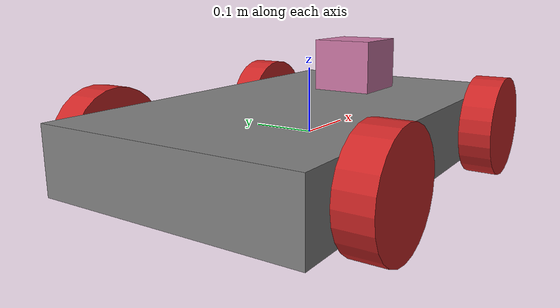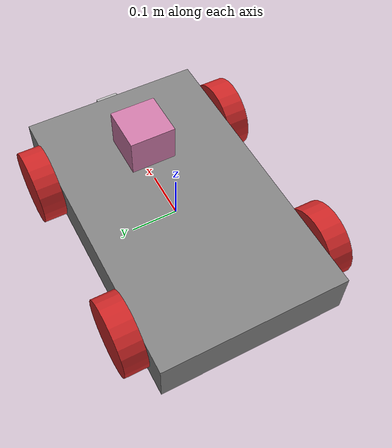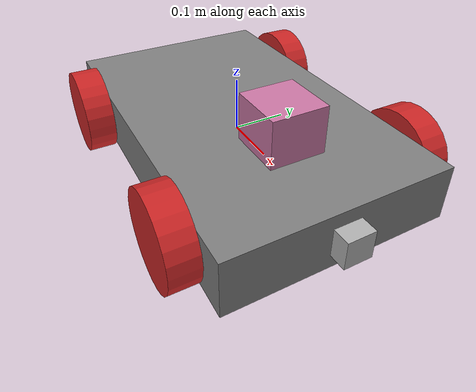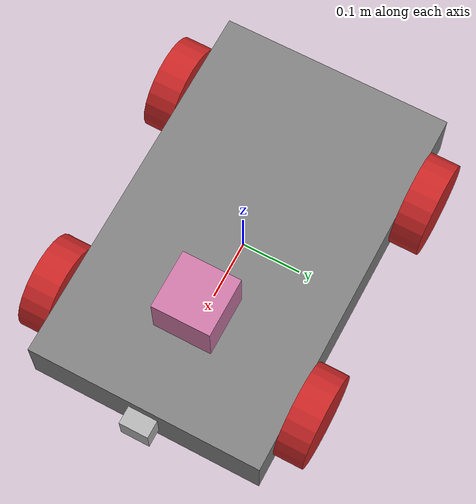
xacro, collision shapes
<?xml version="1.0" ?>

<robot xmlns:xacro="http://www.ros.org/wiki/xacro" name="my_robot">

  <xacro:include filename="$(find my_robot)/urdf/colors.xacro" />
  <xacro:include filename="$(find my_robot)/urdf/my_robot.gazebo" />

    <!-- Robot footprint link -->
  <link name="robot_footprint"/>
  <joint name="robot_footprint_joint" type="fixed">
    <origin xyz="0 0 0" rpy="0 0 0" />
    <parent link="robot_footprint" />
    <child link="base_link" />
  </joint>

    <!-- Robot base_link -->
  <link name="base_link">
    <inertial>
      <origin xyz="0.0 0.0 0.0" rpy="0 0 0"/>
      <mass value="15.0"/>
      <inertia ixx="0.1" ixy="0.0" ixz="0.0" iyy="0.1" iyz="0.0" izz="0.1"/>
    </inertial>
    <visual name="base_link">
      <origin xyz="0.0 0.0 0.0" rpy="0.0 0.0 0.0"/>
      <geometry>
        <box size="0.65 0.4 0.1"/>
      </geometry>
      <material name="gray">
        <color rgba="0.5 0.5 0.5 1.0"/>
      </material>
    </visual>
    <collision>
      <origin xyz="0.0 0.0 0.0" rpy="0.0 0.0 0.0"/>
      <geometry>
        <box size="0.65 0.4 0.1"/>
      </geometry>
    </collision>
   </link>

    <!-- xacro setup -->
  <xacro:macro name="wheel" params="name x y z r p n">

      <link name="${name}">
          <inertial>
              <origin xyz="0.0 0.0 0.0" rpy="0.0 0.0 0.0"/>
              <mass value="10.0"/>
              <inertia ixx="0.1" ixy="0.0" ixz="0.0" iyy="0.1" iyz="0.0" izz="0.1"/>
          </inertial>
          <visual name="${name}">
              <origin xyz="0.0 0.0 0.0" rpy="0.0 0.0 0.0"/>
              <geometry>
                  <cylinder radius="0.08" length="0.05"/>
              </geometry>
              <material name="red">
              </material>
          </visual>
          <collision>
              <origin xyz="0.0 0.0 0.0" rpy="0.0 0.0 0.0"/>
              <geometry>
                  <cylinder radius="0.08" length="0.05"/>
              </geometry>
          </collision>
      </link>

      <joint name="Joint_${name}" type="continuous">
          <origin xyz="${x} ${y} ${z}" rpy="${r} ${p} ${n}"/>
          <parent link="base_link"/>
          <child link="${name}"/>
          <axis xyz="0.0 0.0 1.0"/>
      </joint>
  </xacro:macro>

    <!--wheel with xacro-->
  <xacro:wheel name="Left_Wheel_Front" x="0.2" y="0.225" z="0.0" r="1.5708" p="3.14" n="3.14"/>
  <xacro:wheel name="Right_Wheel_Back" x="-0.2" y="-0.225" z="0.0" r="1.5708" p="3.14" n="3.14"/>
  <xacro:wheel name="Left_Wheel_Back" x="-0.2" y="0.225" z="0.0" r="1.5708" p="3.14" n="3.14"/>
  <xacro:wheel name="Right_Wheel_Front" x="0.2" y="-0.225" z="0.0" r="1.5708" p="3.14" n="3.14"/>

    <!-- Hokuyo_lidar -->
  <link name="hokuyo">
      <inertial>
          <origin xyz="0.0 0.0 0.0" rpy="0.0 0.0 0.0"/>
          <mass value="0.25"/>
          <inertia ixx="1e-6" ixy="0.0" ixz="0.0" iyy="1e-6" iyz="0.0" izz="1e-6"/>
      </inertial>
      <visual name="hokuyo">
          <origin xyz="0.0 0.0 -0.015" rpy="0.0 0.0 0.0"/>
          <geometry>
              <mesh filename="package://my_robot/meshes/hokuyo.dae"/>
          </geometry>
          <material name="realsense_material">
            <texture filename="package://my_robot/materials/textures/realsense_diffuse.png"/>
          </material>
      </visual>
      <collision>
          <origin xyz="0.0 0.0 -0.015" rpy="0.0 0.0 0.0"/>
          <geometry>
              <box size="0.1 0.1 0.1"/>
          </geometry>
      </collision>
  </link>

  <joint name="hokuyo_joint" type="fixed">
    <origin xyz="0.15 0.0 0.1" rpy="0.0 0.0 0.0"/>
    <parent link="base_link"/>
    <child link="hokuyo"/>
    <axis xyz="0.0 1.0 0.0"/>
  </joint>

    <!-- camera -->
  <link name="camera_link">
      <inertial>
          <origin xyz="0.0 0.0 0.0" rpy="0.0 0.0 0.0"/>
          <mass value="0.35"/>
          <inertia ixx="1e-6" ixy="0.0" ixz="0.0" iyy="1e-6" iyz="0.0" izz="1e-6"/>
      </inertial>
      <visual name="camera">
          <origin xyz="0.0 0.0 0.0" rpy="0.0 0.0 0.0"/>
          <geometry>
              <mesh filename="package://my_robot/meshes/realsense.dae"/>
          </geometry>
      </visual>
      <collision>
          <origin xyz="0.0 0.0 0.0" rpy="0.0 0.0 0.0"/>
          <geometry>
              <box size="0.05 0.05 0.05"/>
          </geometry>
      </collision>

  </link>

  <joint name="camera_joint" type="fixed">
      <origin xyz="0.33 0.0 0.0" rpy="0.0 0.0 0.0"/>
      <parent link="base_link"/>
      <child link="camera_link"/>
      <axis xyz="0.0 1.0 0.0"/>
  </joint>

  <!-- camera optical -->
  <link name="camera_frame_optical"/>

  <joint name="camera_optical_joint" type="fixed">
    <origin xyz="0 0 0" rpy="-1.5708 0 -1.5708"/>
    <parent link="camera_link"/>
    <child link="camera_frame_optical"/>
  </joint>

</robot>
